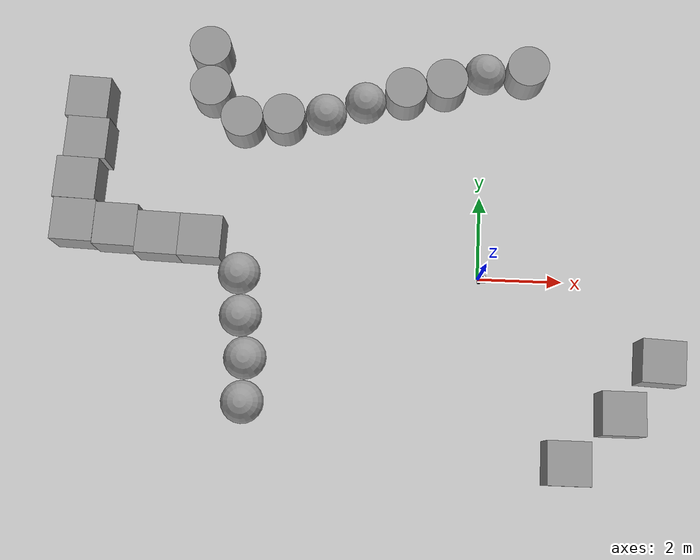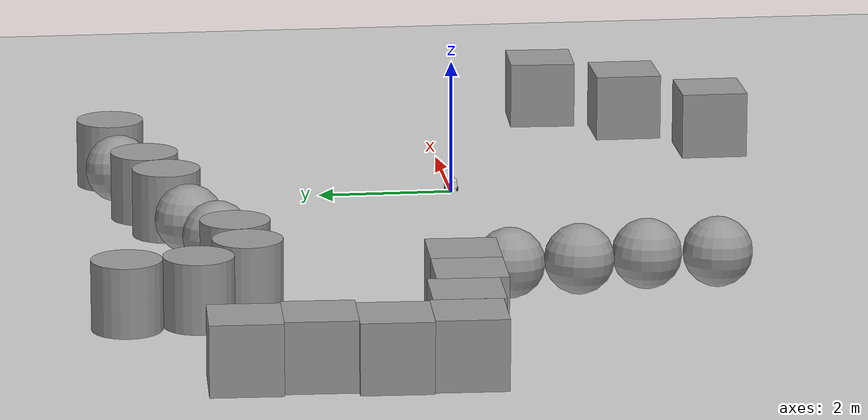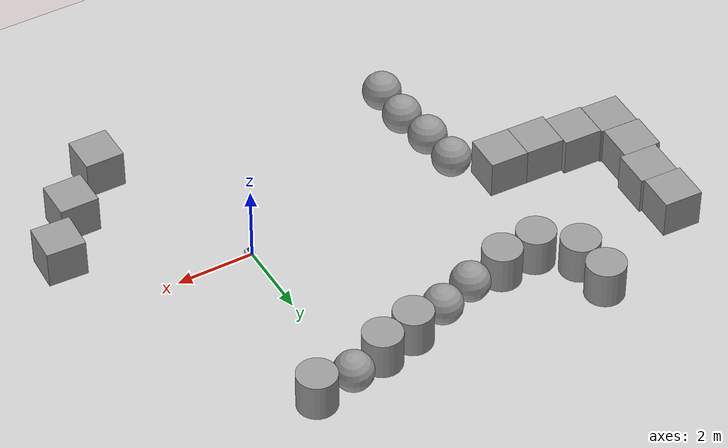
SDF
<sdf version="1.7">
 <world name="default">
  <light name="sun" type="directional">
   <pose>0 0 10 0 -0 0</pose>
   <diffuse>0.8 0.8 0.8 1</diffuse>
   <specular>0.2 0.2 0.2 1</specular>
   <attenuation>
    <range>1000</range>
    <constant>0.9</constant>
    <linear>0.01</linear>
    <quadratic>0.001</quadratic>
   </attenuation>
   <direction>-0.5 0.1 -0.9</direction>
   <spot><inner_angle>0</inner_angle><outer_angle>0</outer_angle><falloff>0</falloff></spot>
  </light>
  <model name="ground_plane">
   <static>1</static>
   <link name="link">
    <collision name="collision">
     <geometry><plane><normal>0 0 1</normal><size>100 100</size></plane></geometry>
     <surface><friction><ode><mu>100</mu><mu2>50</mu2></ode></friction></surface>
    </collision>
    <visual name="visual">
     <cast_shadows>0</cast_shadows>
     <geometry><plane><normal>0 0 1</normal><size>100 100</size></plane></geometry>
     <material>
      <script><uri>file://media/materials/scripts/gazebo.material</uri><name>Gazebo/Grey</name></script>
     </material>
    </visual>
   </link>
  </model>
  <gravity>0 0 -9.8</gravity>
  <magnetic_field>6e-06 2.3e-05 -4.2e-05</magnetic_field>
  <atmosphere type="adiabatic"/>
  <physics type="ode">
   <max_step_size>0.001</max_step_size>
   <real_time_factor>1</real_time_factor>
   <real_time_update_rate>1000</real_time_update_rate>
  </physics>
  <scene><ambient>0.4 0.4 0.4 1</ambient><background>0.7 0.7 0.7 1</background><shadows>1</shadows></scene>
  <spherical_coordinates>
   <surface_model>EARTH_WGS84</surface_model>
   <latitude_deg>0</latitude_deg>
   <longitude_deg>0</longitude_deg>
   <elevation>0</elevation>
   <heading_deg>0</heading_deg>
  </spherical_coordinates>
  <model name="my_bot">
   <link name="base_link">
    <inertial>
     <pose>0.072318 0 0.051364 0 -0 0</pose>
     <mass>1.1</mass>
     <inertia>
      <ixx>0.00419779</ixx>
      <ixy>0</ixy>
      <ixz>0.000395977</ixz>
      <iyy>0.0050284</iyy>
      <iyz>0</iyz>
      <izz>0.00538586</izz>
     </inertia>
    </inertial>
    <collision name="base_link_fixed_joint_lump__caster_wheel_collision">
     <pose>0.12 0 -0.02 0 -0 0</pose>
     <geometry><sphere><radius>0.035</radius></sphere></geometry>
     <surface><friction><ode><mu>0.001</mu><mu2>0.001</mu2></ode></friction></surface>
    </collision>
    <collision name="base_link_fixed_joint_lump__chassis_collision_1">
     <pose>0.0625 0 0.05 0 -0 0</pose>
     <geometry><box><size>0.195 0.18 0.1</size></box></geometry>
    </collision>
    <collision name="base_link_fixed_joint_lump__camera_link_collision_2">
     <pose>0.1105 0 0.05 0 -0 0</pose>
     <geometry><cylinder><length>0.025</length><radius>0.035</radius></cylinder></geometry>
    </collision>
    <collision name="base_link_fixed_joint_lump__laser_frame_collision_3">
     <pose>0.065 0 0.135 0 -0 0</pose>
     <geometry><cylinder><length>0.04</length><radius>0.05</radius></cylinder></geometry>
    </collision>
    <visual name="base_link_fixed_joint_lump__caster_wheel_visual">
     <pose>0.12 0 -0.02 0 -0 0</pose>
     <geometry><sphere><radius>0.035</radius></sphere></geometry>
     <material>
      <script><name>Gazebo/Black</name><uri>file://media/materials/scripts/gazebo.material</uri></script>
     </material>
    </visual>
    <visual name="base_link_fixed_joint_lump__chassis_visual_1">
     <pose>0.0625 0 0.05 0 -0 0</pose>
     <geometry><box><size>0.195 0.18 0.1</size></box></geometry>
     <material>
      <script><name>Gazebo/White</name><uri>file://media/materials/scripts/gazebo.material</uri></script>
     </material>
    </visual>
    <visual name="base_link_fixed_joint_lump__camera_link_visual_2">
     <pose>0.1105 0 0.05 0 -0 0</pose>
     <geometry><box><size>0.017 0.017 0.017</size></box></geometry>
     <material>
      <script><name>Gazebo/Red</name><uri>file://media/materials/scripts/gazebo.material</uri></script>
     </material>
    </visual>
    <visual name="base_link_fixed_joint_lump__laser_frame_visual_3">
     <pose>0.065 0 0.135 0 -0 0</pose>
     <geometry><cylinder><length>0.04</length><radius>0.05</radius></cylinder></geometry>
     <material>
      <script><name>Gazebo/Black</name><uri>file://media/materials/scripts/gazebo.material</uri></script>
     </material>
    </visual>
    <visual name="base_link_fixed_joint_lump__laser_frame_visual_4">
     <pose>0.065 0 0.085 0 -0 0</pose>
     <geometry><cylinder><length>0.1</length><radius>0.01</radius></cylinder></geometry>
     <material>
      <script><name>Gazebo/Black</name><uri>file://media/materials/scripts/gazebo.material</uri></script>
     </material>
    </visual>
    <sensor name="camera" type="camera">
     <visualize>1</visualize>
     <update_rate>10</update_rate>
     <camera>
      <horizontal_fov>1.39626</horizontal_fov>
      <image><width>640</width><height>480</height><format>R8G8B8</format></image>
      <clip><near>0.1</near><far>100</far></clip>
     </camera>
     <plugin name="camera_controller" filename="libgazebo_ros_camera.so">
      <frameName>camera_optical_link</frameName>
     </plugin>
     <pose>0.1105 0 0.05 0 -0 0</pose>
    </sensor>
    <sensor name="laser" type="ray">
     <visualize>1</visualize>
     <update_rate>10</update_rate>
     <ray>
      <scan>
       <horizontal>
        <samples>360</samples>
        <min_angle>-3.14</min_angle>
        <max_angle>3.14</max_angle>
        <resolution>1</resolution>
       </horizontal>
       <vertical><samples>1</samples><min_angle>0</min_angle><max_angle>0</max_angle></vertical>
      </scan>
      <range><min>0.3</min><max>12</max></range>
     </ray>
     <plugin name="laser_controller" filename="libgazebo_ros_ray_sensor.so">
      <ros><argument>~/out:=scan</argument></ros>
      <output_type>sensor_msgs/LaserScan</output_type>
      <frame_name>laser_frame</frame_name>
     </plugin>
     <pose>0.065 0 0.135 0 -0 0</pose>
    </sensor>
   </link>
   <joint name="left_wheel_joint" type="revolute">
    <pose relative_to="base_link">0 0.09 -0.02 -1.5708 0 0</pose>
    <parent>base_link</parent>
    <child>left_wheel</child>
    <axis>
     <xyz>0 0 1</xyz>
     <limit><lower>-1e+16</lower><upper>1e+16</upper></limit>
     <dynamics><spring_reference>0</spring_reference><spring_stiffness>0</spring_stiffness></dynamics>
    </axis>
   </joint>
   <link name="left_wheel">
    <pose relative_to="left_wheel_joint">0 0 0 0 -0 0</pose>
    <inertial>
     <mass>0.1</mass>
     <inertia>
      <ixx>3.67e-05</ixx>
      <ixy>0</ixy>
      <ixz>0</ixz>
      <iyy>3.67e-05</iyy>
      <iyz>0</iyz>
      <izz>6.125e-05</izz>
     </inertia>
    </inertial>
    <collision name="left_wheel_collision">
     <geometry><cylinder><length>0.027</length><radius>0.035</radius></cylinder></geometry>
    </collision>
    <visual name="left_wheel_visual">
     <geometry><cylinder><length>0.027</length><radius>0.035</radius></cylinder></geometry>
     <material>
      <script><name>Gazebo/Black</name><uri>file://media/materials/scripts/gazebo.material</uri></script>
     </material>
    </visual>
   </link>
   <joint name="right_wheel_joint" type="revolute">
    <pose relative_to="base_link">0 -0.09 -0.02 1.5708 -0 0</pose>
    <parent>base_link</parent>
    <child>right_wheel</child>
    <axis>
     <xyz>0 0 -1</xyz>
     <limit><lower>-1e+16</lower><upper>1e+16</upper></limit>
     <dynamics><spring_reference>0</spring_reference><spring_stiffness>0</spring_stiffness></dynamics>
    </axis>
   </joint>
   <link name="right_wheel">
    <pose relative_to="right_wheel_joint">0 0 0 0 -0 0</pose>
    <inertial>
     <mass>0.1</mass>
     <inertia>
      <ixx>3.58333e-05</ixx>
      <ixy>0</ixy>
      <ixz>0</ixz>
      <iyy>3.58333e-05</iyy>
      <iyz>0</iyz>
      <izz>6.125e-05</izz>
     </inertia>
    </inertial>
    <collision name="right_wheel_collision">
     <geometry><cylinder><length>0.025</length><radius>0.035</radius></cylinder></geometry>
    </collision>
    <visual name="right_wheel_visual">
     <geometry><cylinder><length>0.025</length><radius>0.035</radius></cylinder></geometry>
     <material>
      <script><name>Gazebo/Black</name><uri>file://media/materials/scripts/gazebo.material</uri></script>
     </material>
    </visual>
   </link>
   <static>0</static>
   <plugin name="gazebo_ros2_control" filename="libgazebo_ros2_control.so">
    <parameters>/autonomous_ROS/install/my_robot_launch/share/my_robot_launch/config/my_controllers.yaml</parameters>
    <parameters>/autonomous_ROS/install/my_robot_launch/share/my_robot_launch/config/gaz_ros2_ctl_use_sim.yaml</parameters>
   </plugin>
   <pose>0.01383 0.000345 0.055 0 4e-06 0.00072</pose>
  </model>
  <model name="unit_box">
   <pose>2.02591 -4.26417 0.499995 -1e-05 -0 -0</pose>
   <link name="link">
    <inertial>
     <mass>1</mass>
     <inertia>
      <ixx>0.166667</ixx>
      <ixy>0</ixy>
      <ixz>0</ixz>
      <iyy>0.166667</iyy>
      <iyz>0</iyz>
      <izz>0.166667</izz>
     </inertia>
    </inertial>
    <collision name="collision"><geometry><box><size>1 1 1</size></box></geometry></collision>
    <visual name="visual">
     <geometry><box><size>1 1 1</size></box></geometry>
     <material>
      <script><name>Gazebo/Grey</name><uri>file://media/materials/scripts/gazebo.material</uri></script>
     </material>
    </visual>
   </link>
  </model>
  <model name="unit_box_0">
   <pose>3.26515 -3.11296 0.499995 -1e-05 -0 -0</pose>
   <link name="link">
    <inertial>
     <mass>1</mass>
     <inertia>
      <ixx>0.166667</ixx>
      <ixy>0</ixy>
      <ixz>0</ixz>
      <iyy>0.166667</iyy>
      <iyz>0</iyz>
      <izz>0.166667</izz>
     </inertia>
    </inertial>
    <collision name="collision"><geometry><box><size>1 1 1</size></box></geometry></collision>
    <visual name="visual">
     <geometry><box><size>1 1 1</size></box></geometry>
     <material>
      <script><name>Gazebo/Grey</name><uri>file://media/materials/scripts/gazebo.material</uri></script>
     </material>
    </visual>
   </link>
  </model>
  <model name="unit_cylinder">
   <pose>1.04153 5.06746 0.499997 3e-06 4e-06 -0.106818</pose>
   <link name="link">
    <inertial>
     <mass>1</mass>
     <inertia><ixx>0.145833</ixx><ixy>0</ixy><ixz>0</ixz><iyy>0.145833</iyy><iyz>0</iyz><izz>0.125</izz></inertia>
    </inertial>
    <collision name="collision">
     <geometry><cylinder><radius>0.5</radius><length>1</length></cylinder></geometry>
    </collision>
    <visual name="visual">
     <geometry><cylinder><radius>0.5</radius><length>1</length></cylinder></geometry>
     <material>
      <script><name>Gazebo/Grey</name><uri>file://media/materials/scripts/gazebo.material</uri></script>
     </material>
    </visual>
   </link>
  </model>
  <model name="unit_sphere">
   <pose>0.042274 4.99632 0.5 -0.068773 0.102494 0.096536</pose>
   <link name="link">
    <inertial>
     <mass>1</mass>
     <inertia><ixx>0.1</ixx><ixy>0</ixy><ixz>0</ixz><iyy>0.1</iyy><iyz>0</iyz><izz>0.1</izz></inertia>
    </inertial>
    <collision name="collision"><geometry><sphere><radius>0.5</radius></sphere></geometry></collision>
    <visual name="visual">
     <geometry><sphere><radius>0.5</radius></sphere></geometry>
     <material>
      <script><name>Gazebo/Grey</name><uri>file://media/materials/scripts/gazebo.material</uri></script>
     </material>
    </visual>
   </link>
  </model>
  <model name="unit_box_1">
   <pose>-8.56203 0.815894 0.499995 -0 1e-05 -0.031958</pose>
   <link name="link">
    <inertial>
     <mass>1</mass>
     <inertia>
      <ixx>0.166667</ixx>
      <ixy>0</ixy>
      <ixz>0</ixz>
      <iyy>0.166667</iyy>
      <iyz>0</iyz>
      <izz>0.166667</izz>
     </inertia>
    </inertial>
    <collision name="collision"><geometry><box><size>1 1 1</size></box></geometry></collision>
    <visual name="visual">
     <geometry><box><size>1 1 1</size></box></geometry>
     <material>
      <script><name>Gazebo/Grey</name><uri>file://media/materials/scripts/gazebo.material</uri></script>
     </material>
    </visual>
   </link>
  </model>
  <model name="unit_box_2">
   <pose>-9.56158 0.89611 0.499995 0 1e-05 -0.035384</pose>
   <link name="link">
    <inertial>
     <mass>1</mass>
     <inertia>
      <ixx>0.166667</ixx>
      <ixy>0</ixy>
      <ixz>0</ixz>
      <iyy>0.166667</iyy>
      <iyz>0</iyz>
      <izz>0.166667</izz>
     </inertia>
    </inertial>
    <collision name="collision"><geometry><box><size>1 1 1</size></box></geometry></collision>
    <visual name="visual">
     <geometry><box><size>1 1 1</size></box></geometry>
     <material>
      <script><name>Gazebo/Grey</name><uri>file://media/materials/scripts/gazebo.material</uri></script>
     </material>
    </visual>
   </link>
  </model>
  <model name="unit_box_3">
   <pose>-9.57766 1.89926 0.499995 0 1e-05 -0.039117</pose>
   <link name="link">
    <inertial>
     <mass>1</mass>
     <inertia>
      <ixx>0.166667</ixx>
      <ixy>0</ixy>
      <ixz>0</ixz>
      <iyy>0.166667</iyy>
      <iyz>0</iyz>
      <izz>0.166667</izz>
     </inertia>
    </inertial>
    <collision name="collision"><geometry><box><size>1 1 1</size></box></geometry></collision>
    <visual name="visual">
     <geometry><box><size>1 1 1</size></box></geometry>
     <material>
      <script><name>Gazebo/Grey</name><uri>file://media/materials/scripts/gazebo.material</uri></script>
     </material>
    </visual>
   </link>
  </model>
  <model name="unit_box_4">
   <pose>-9.40667 2.89367 0.499995 -0 -1e-05 -0.039755</pose>
   <link name="link">
    <inertial>
     <mass>1</mass>
     <inertia>
      <ixx>0.166667</ixx>
      <ixy>0</ixy>
      <ixz>0</ixz>
      <iyy>0.166667</iyy>
      <iyz>0</iyz>
      <izz>0.166667</izz>
     </inertia>
    </inertial>
    <collision name="collision"><geometry><box><size>1 1 1</size></box></geometry></collision>
    <visual name="visual">
     <geometry><box><size>1 1 1</size></box></geometry>
     <material>
      <script><name>Gazebo/Grey</name><uri>file://media/materials/scripts/gazebo.material</uri></script>
     </material>
    </visual>
   </link>
  </model>
  <model name="unit_box_5">
   <pose>-7.56662 0.651788 0.499995 0 1e-05 -0.032377</pose>
   <link name="link">
    <inertial>
     <mass>1</mass>
     <inertia>
      <ixx>0.166667</ixx>
      <ixy>0</ixy>
      <ixz>0</ixz>
      <iyy>0.166667</iyy>
      <iyz>0</iyz>
      <izz>0.166667</izz>
     </inertia>
    </inertial>
    <collision name="collision"><geometry><box><size>1 1 1</size></box></geometry></collision>
    <visual name="visual">
     <geometry><box><size>1 1 1</size></box></geometry>
     <material>
      <script><name>Gazebo/Grey</name><uri>file://media/materials/scripts/gazebo.material</uri></script>
     </material>
    </visual>
   </link>
  </model>
  <model name="unit_box_6">
   <pose>-6.56711 0.618555 0.499995 -1e-05 -0 -0.032477</pose>
   <link name="link">
    <inertial>
     <mass>1</mass>
     <inertia>
      <ixx>0.166667</ixx>
      <ixy>0</ixy>
      <ixz>0</ixz>
      <iyy>0.166667</iyy>
      <iyz>0</iyz>
      <izz>0.166667</izz>
     </inertia>
    </inertial>
    <collision name="collision"><geometry><box><size>1 1 1</size></box></geometry></collision>
    <visual name="visual">
     <geometry><box><size>1 1 1</size></box></geometry>
     <material>
      <script><name>Gazebo/Grey</name><uri>file://media/materials/scripts/gazebo.material</uri></script>
     </material>
    </visual>
   </link>
  </model>
  <model name="unit_box_7">
   <pose>4.17827 -1.90619 0.499995 1e-05 -0 -0.044544</pose>
   <link name="link">
    <inertial>
     <mass>1</mass>
     <inertia>
      <ixx>0.166667</ixx>
      <ixy>0</ixy>
      <ixz>0</ixz>
      <iyy>0.166667</iyy>
      <iyz>0</iyz>
      <izz>0.166667</izz>
     </inertia>
    </inertial>
    <collision name="collision"><geometry><box><size>1 1 1</size></box></geometry></collision>
    <visual name="visual">
     <geometry><box><size>1 1 1</size></box></geometry>
     <material>
      <script><name>Gazebo/Grey</name><uri>file://media/materials/scripts/gazebo.material</uri></script>
     </material>
    </visual>
   </link>
  </model>
  <model name="unit_box_8">
   <pose>-9.44821 3.89613 0.5 0 0 -0.039784</pose>
   <link name="link">
    <inertial>
     <mass>1</mass>
     <inertia>
      <ixx>0.166667</ixx>
      <ixy>0</ixy>
      <ixz>0</ixz>
      <iyy>0.166667</iyy>
      <iyz>0</iyz>
      <izz>0.166667</izz>
     </inertia>
    </inertial>
    <collision name="collision"><geometry><box><size>1 1 1</size></box></geometry></collision>
    <visual name="visual">
     <geometry><box><size>1 1 1</size></box></geometry>
     <material>
      <script><name>Gazebo/Grey</name><uri>file://media/materials/scripts/gazebo.material</uri></script>
     </material>
    </visual>
   </link>
  </model>
  <model name="unit_cylinder_0">
   <pose>-6.6242 5.29295 0.499997 3e-06 2e-06 0.020227</pose>
   <link name="link">
    <inertial>
     <mass>1</mass>
     <inertia><ixx>0.145833</ixx><ixy>0</ixy><ixz>0</ixz><iyy>0.145833</iyy><iyz>0</iyz><izz>0.125</izz></inertia>
    </inertial>
    <collision name="collision">
     <geometry><cylinder><radius>0.5</radius><length>1</length></cylinder></geometry>
    </collision>
    <visual name="visual">
     <geometry><cylinder><radius>0.5</radius><length>1</length></cylinder></geometry>
     <material>
      <script><name>Gazebo/Grey</name><uri>file://media/materials/scripts/gazebo.material</uri></script>
     </material>
    </visual>
   </link>
  </model>
  <model name="unit_cylinder_1">
   <pose>-6.55067 4.29526 0.499994 -3e-06 -2e-06 0.004766</pose>
   <link name="link">
    <inertial>
     <mass>1</mass>
     <inertia><ixx>0.145833</ixx><ixy>0</ixy><ixz>0</ixz><iyy>0.145833</iyy><iyz>0</iyz><izz>0.125</izz></inertia>
    </inertial>
    <collision name="collision">
     <geometry><cylinder><radius>0.5</radius><length>1</length></cylinder></geometry>
    </collision>
    <visual name="visual">
     <geometry><cylinder><radius>0.5</radius><length>1</length></cylinder></geometry>
     <material>
      <script><name>Gazebo/Grey</name><uri>file://media/materials/scripts/gazebo.material</uri></script>
     </material>
    </visual>
   </link>
  </model>
  <model name="unit_cylinder_2">
   <pose>-5.76727 3.55171 0.499991 0 -0 0.007203</pose>
   <link name="link">
    <inertial>
     <mass>1</mass>
     <inertia><ixx>0.145833</ixx><ixy>0</ixy><ixz>0</ixz><iyy>0.145833</iyy><iyz>0</iyz><izz>0.125</izz></inertia>
    </inertial>
    <collision name="collision">
     <geometry><cylinder><radius>0.5</radius><length>1</length></cylinder></geometry>
    </collision>
    <visual name="visual">
     <geometry><cylinder><radius>0.5</radius><length>1</length></cylinder></geometry>
     <material>
      <script><name>Gazebo/Grey</name><uri>file://media/materials/scripts/gazebo.material</uri></script>
     </material>
    </visual>
   </link>
  </model>
  <model name="unit_cylinder_3">
   <pose>-4.77012 3.64756 0.499999 -2e-06 0 -0.006425</pose>
   <link name="link">
    <inertial>
     <mass>1</mass>
     <inertia><ixx>0.145833</ixx><ixy>0</ixy><ixz>0</ixz><iyy>0.145833</iyy><iyz>0</iyz><izz>0.125</izz></inertia>
    </inertial>
    <collision name="collision">
     <geometry><cylinder><radius>0.5</radius><length>1</length></cylinder></geometry>
    </collision>
    <visual name="visual">
     <geometry><cylinder><radius>0.5</radius><length>1</length></cylinder></geometry>
     <material>
      <script><name>Gazebo/Grey</name><uri>file://media/materials/scripts/gazebo.material</uri></script>
     </material>
    </visual>
   </link>
  </model>
  <model name="unit_sphere_0">
   <pose>-3.78507 3.82481 0.5 0.003193 0.050144 -0.025937</pose>
   <link name="link">
    <inertial>
     <mass>1</mass>
     <inertia><ixx>0.1</ixx><ixy>0</ixy><ixz>0</ixz><iyy>0.1</iyy><iyz>0</iyz><izz>0.1</izz></inertia>
    </inertial>
    <collision name="collision"><geometry><sphere><radius>0.5</radius></sphere></geometry></collision>
    <visual name="visual">
     <geometry><sphere><radius>0.5</radius></sphere></geometry>
     <material>
      <script><name>Gazebo/Grey</name><uri>file://media/materials/scripts/gazebo.material</uri></script>
     </material>
    </visual>
   </link>
  </model>
  <model name="unit_sphere_1">
   <pose>-2.8407 4.15858 0.5 0.002108 0.019962 0.073186</pose>
   <link name="link">
    <inertial>
     <mass>1</mass>
     <inertia><ixx>0.1</ixx><ixy>0</ixy><ixz>0</ixz><iyy>0.1</iyy><iyz>0</iyz><izz>0.1</izz></inertia>
    </inertial>
    <collision name="collision"><geometry><sphere><radius>0.5</radius></sphere></geometry></collision>
    <visual name="visual">
     <geometry><sphere><radius>0.5</radius></sphere></geometry>
     <material>
      <script><name>Gazebo/Grey</name><uri>file://media/materials/scripts/gazebo.material</uri></script>
     </material>
    </visual>
   </link>
  </model>
  <model name="unit_cylinder_4">
   <pose>-1.87492 4.41873 0.499991 2e-06 -1e-06 -0.077686</pose>
   <link name="link">
    <inertial>
     <mass>1</mass>
     <inertia><ixx>0.145833</ixx><ixy>0</ixy><ixz>0</ixz><iyy>0.145833</iyy><iyz>0</iyz><izz>0.125</izz></inertia>
    </inertial>
    <collision name="collision">
     <geometry><cylinder><radius>0.5</radius><length>1</length></cylinder></geometry>
    </collision>
    <visual name="visual">
     <geometry><cylinder><radius>0.5</radius><length>1</length></cylinder></geometry>
     <material>
      <script><name>Gazebo/Grey</name><uri>file://media/materials/scripts/gazebo.material</uri></script>
     </material>
    </visual>
   </link>
  </model>
  <model name="unit_cylinder_5">
   <pose>-0.906967 4.6734 0.499992 -3e-06 4e-06 0.034371</pose>
   <link name="link">
    <inertial>
     <mass>1</mass>
     <inertia><ixx>0.145833</ixx><ixy>0</ixy><ixz>0</ixz><iyy>0.145833</iyy><iyz>0</iyz><izz>0.125</izz></inertia>
    </inertial>
    <collision name="collision">
     <geometry><cylinder><radius>0.5</radius><length>1</length></cylinder></geometry>
    </collision>
    <visual name="visual">
     <geometry><cylinder><radius>0.5</radius><length>1</length></cylinder></geometry>
     <material>
      <script><name>Gazebo/Grey</name><uri>file://media/materials/scripts/gazebo.material</uri></script>
     </material>
    </visual>
   </link>
  </model>
  <model name="unit_sphere_2">
   <pose>-5.65265 -0.153149 0.5 0.033972 -0.006624 0.013031</pose>
   <link name="link">
    <inertial>
     <mass>1</mass>
     <inertia><ixx>0.1</ixx><ixy>0</ixy><ixz>0</ixz><iyy>0.1</iyy><iyz>0</iyz><izz>0.1</izz></inertia>
    </inertial>
    <collision name="collision"><geometry><sphere><radius>0.5</radius></sphere></geometry></collision>
    <visual name="visual">
     <geometry><sphere><radius>0.5</radius></sphere></geometry>
     <material>
      <script><name>Gazebo/Grey</name><uri>file://media/materials/scripts/gazebo.material</uri></script>
     </material>
    </visual>
   </link>
  </model>
  <model name="unit_sphere_3">
   <pose>-5.56215 -1.15027 0.5 0.027593 0.002484 0.021077</pose>
   <link name="link">
    <inertial>
     <mass>1</mass>
     <inertia><ixx>0.1</ixx><ixy>0</ixy><ixz>0</ixz><iyy>0.1</iyy><iyz>0</iyz><izz>0.1</izz></inertia>
    </inertial>
    <collision name="collision"><geometry><sphere><radius>0.5</radius></sphere></geometry></collision>
    <visual name="visual">
     <geometry><sphere><radius>0.5</radius></sphere></geometry>
     <material>
      <script><name>Gazebo/Grey</name><uri>file://media/materials/scripts/gazebo.material</uri></script>
     </material>
    </visual>
   </link>
  </model>
  <model name="unit_sphere_4">
   <pose>-5.40063 -2.13729 0.5 0.02171 0.023655 0.013584</pose>
   <link name="link">
    <inertial>
     <mass>1</mass>
     <inertia><ixx>0.1</ixx><ixy>0</ixy><ixz>0</ixz><iyy>0.1</iyy><iyz>0</iyz><izz>0.1</izz></inertia>
    </inertial>
    <collision name="collision"><geometry><sphere><radius>0.5</radius></sphere></geometry></collision>
    <visual name="visual">
     <geometry><sphere><radius>0.5</radius></sphere></geometry>
     <material>
      <script><name>Gazebo/Grey</name><uri>file://media/materials/scripts/gazebo.material</uri></script>
     </material>
    </visual>
   </link>
  </model>
  <model name="unit_sphere_5">
   <pose>-5.40762 -3.15063 0.5 0.028763 0.00577 -0.022895</pose>
   <link name="link">
    <inertial>
     <mass>1</mass>
     <inertia><ixx>0.1</ixx><ixy>0</ixy><ixz>0</ixz><iyy>0.1</iyy><iyz>0</iyz><izz>0.1</izz></inertia>
    </inertial>
    <collision name="collision"><geometry><sphere><radius>0.5</radius></sphere></geometry></collision>
    <visual name="visual">
     <geometry><sphere><radius>0.5</radius></sphere></geometry>
     <material>
      <script><name>Gazebo/Grey</name><uri>file://media/materials/scripts/gazebo.material</uri></script>
     </material>
    </visual>
   </link>
  </model>
 </world>
</sdf>
